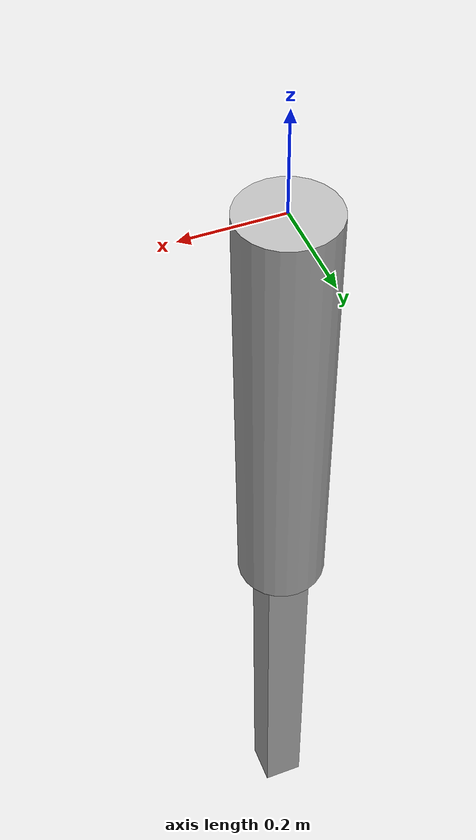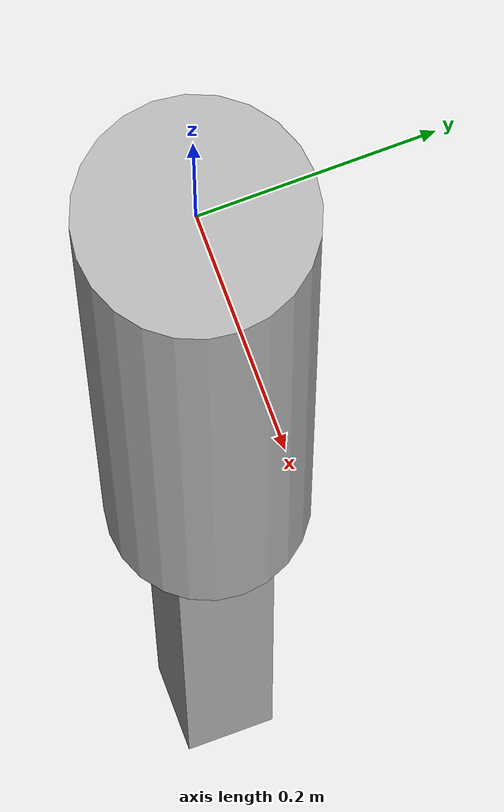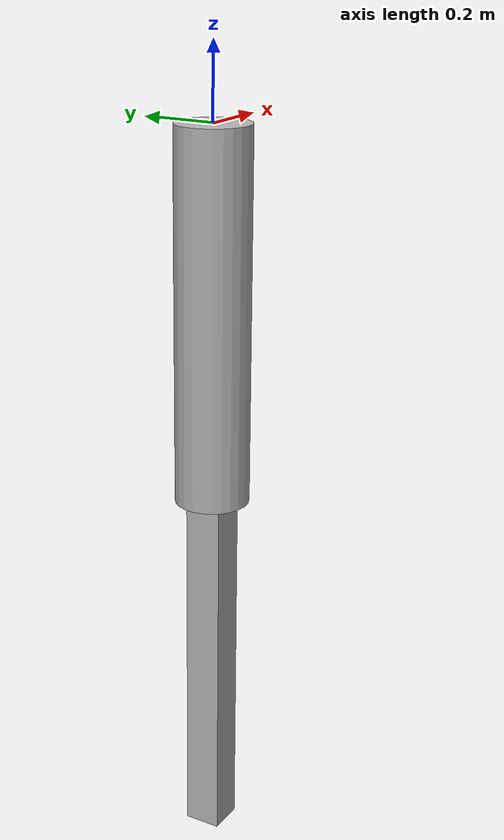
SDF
<?xml version="1.0" ?>
<sdf version="1.3">
    <world name="default">
        <physics type="ode">
            <gravity>1 0 0</gravity>
            <update_rate>1000</update_rate>
            <ode>
                <solver>
                    <type>quick</type>
                    <dt>0.001</dt>
                    <iters>40</iters>
                    <sor>1.0</sor>
                </solver>
                <constraints>
                    <cfm>0.0</cfm>
                    <erp>0.2</erp>
                    <contact_max_correcting_vel>100.0</contact_max_correcting_vel>
                    <contact_surface_layer>0.0</contact_surface_layer>
                </constraints>
            </ode>
        </physics>
        <!-- A global light source -->
        <include>
            <uri>model://sun</uri>
        </include>
        <model name="model_1">
            <pose>0 0 0 0 0 0</pose>
            <link name="link_1">
                <pose>0 0 0 0 0 0</pose>
                <inertial>
                    <pose>0 0 0 0 0 0</pose>
                    <inertia>
                        <ixx>1.000000</ixx>
                        <ixy>0.000000</ixy>
                        <ixz>0.000000</ixz>
                        <iyy>1.000000</iyy>
                        <iyz>0.000000</iyz>
                        <izz>1.000000</izz>
                    </inertia>
                    <mass>10.000000</mass>
                </inertial>
                <visual name="visual_cylinder">
                    <pose>0 0 -0.5 0 0 0</pose>
                    <geometry>
                        <cylinder>
                            <radius>0.100000</radius>
                            <length>1.000000</length>
                        </cylinder>
                    </geometry>
                    <material>
                        <script>Gazebo/Green</script>
                    </material>
                </visual>
                <collision name="collision_cylinder">
                    <pose>0 0 -0.5 0 0 0</pose>
                    <geometry>
                        <cylinder>
                            <radius>0.100000</radius>
                            <length>1.000000</length>
                        </cylinder>
                    </geometry>
                </collision>
            </link>
            <link name="link_2">
                <pose>0 0 -1 0 0 0</pose>
                <inertial>
                    <pose>0 0 -0.5 0 0 0</pose>
                    <inertia>
                        <ixx>1.000000</ixx>
                        <ixy>0.000000</ixy>
                        <ixz>0.000000</ixz>
                        <iyy>1.000000</iyy>
                        <iyz>0.000000</iyz>
                        <izz>1.000000</izz>
                    </inertia>
                    <mass>10.000000</mass>
                </inertial>
                <visual name="visual_box">
                    <pose>0 0 -0.5 0 0 0</pose>
                    <geometry>
                        <box>
                            <size>0.100000 0.100000 1.000000</size>
                        </box>
                    </geometry>
                    <material>
                        <script>Gazebo/Red</script>
                    </material>
                </visual>
                <collision name="collision_box">
                    <pose>0 0 -0.5 0 0 0</pose>
                    <max_contacts>250</max_contacts>
                    <geometry>
                        <box>
                            <size>0.100000 0.100000 1.000000</size>
                        </box>
                    </geometry>
                </collision>
                <gravity>1</gravity>
                <self_collide>0</self_collide>
                <kinematic>0</kinematic>
            </link>
            <joint name="joint_0" type="revolute">
                <parent>world</parent>
                <child>link_1</child>
                <pose>0 0 0 0 0 0</pose>
                <axis>
                    <limit>
                        <!-- effectively fixed -->
                        <lower>0.000000</lower>
                        <upper>0.000000</upper>
                    </limit>
                    <dynamics>
                        <damping>1.000000</damping>
                    </dynamics>
                    <xyz>1.000000 0.000000 0.000000</xyz>
                </axis>
                <physics>
                    <ode>
                        <!-- cfm_damping is being deprecated by implicit_damping -->
                        <cfm_damping>1</cfm_damping>
                        <implicit_damping>1</implicit_damping>
                    </ode>
                </physics>
            </joint>
            <joint name="joint_1" type="universal">
                <parent>link_1</parent>
                <child>link_2</child>
                <pose>0 0 0 0 0 0</pose>
                <axis>
                    <limit>
                        <lower>-0.7</lower>
                        <upper>0.7</upper>
                        <effort>1000.000000</effort>
                        <velocity>1000.000000</velocity>
                    </limit>
                    <dynamics>
                        <damping>1000.000000</damping>
                    </dynamics>
                    <xyz>1.000000 0.000000 0.000000</xyz>
                </axis>
                <axis2>
                    <limit>
                        <lower>-0.7</lower>
                        <upper>0.7</upper>
                        <effort>1000.000000</effort>
                        <velocity>1000.000000</velocity>
                    </limit>
                    <dynamics>
                        <damping>2000.000000</damping>
                    </dynamics>
                    <xyz>0.000000 1.000000 0.000000</xyz>
                </axis2>
                <physics>
                    <ode>
                        <!-- cfm_damping is being deprecated by implicit_damping -->
                        <cfm_damping>1</cfm_damping>
                        <implicit_damping>1</implicit_damping>
                    </ode>
                </physics>
            </joint>
            <static>0</static>
        </model>
    </world>
</sdf>
